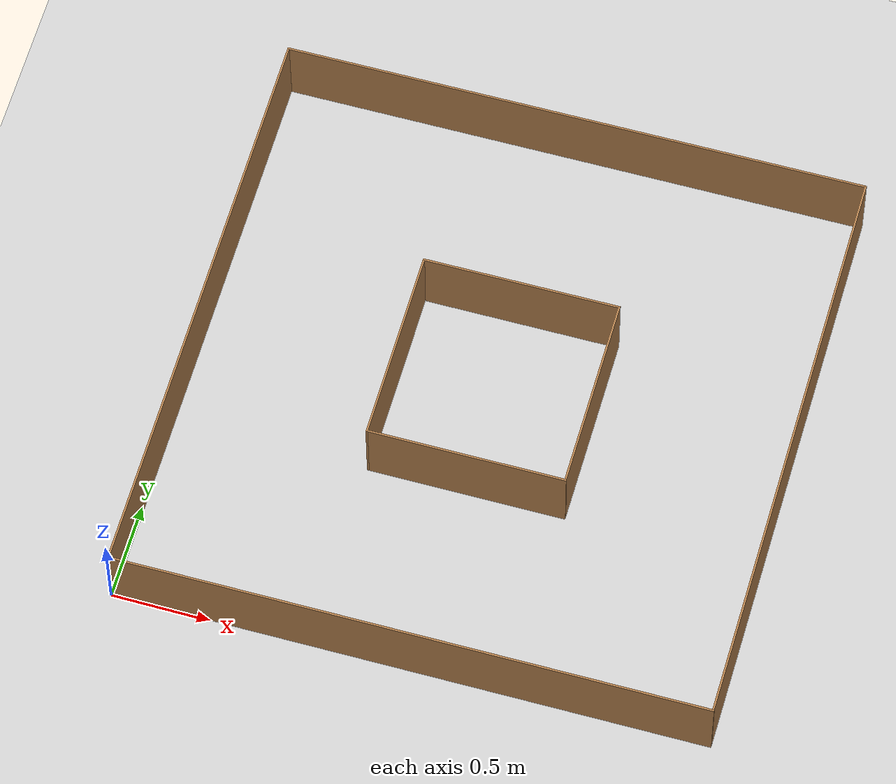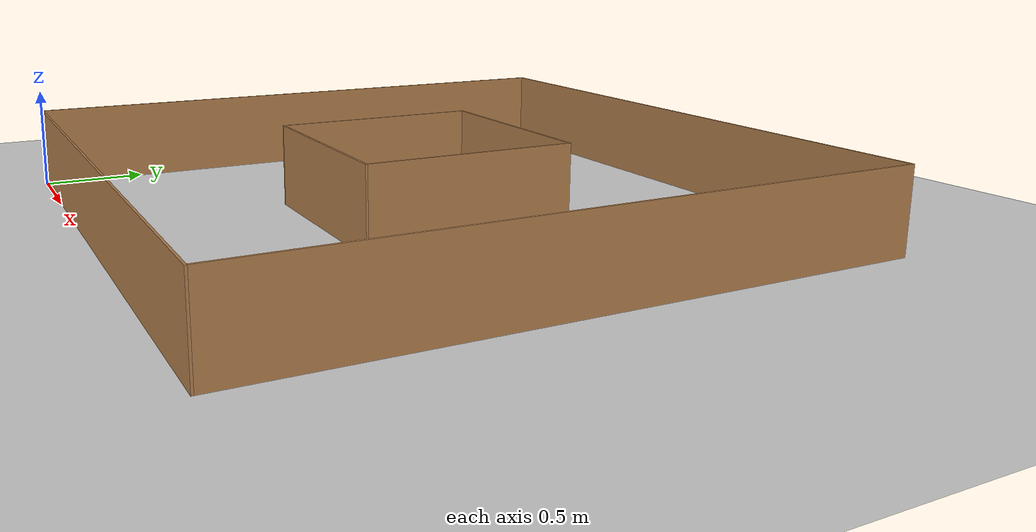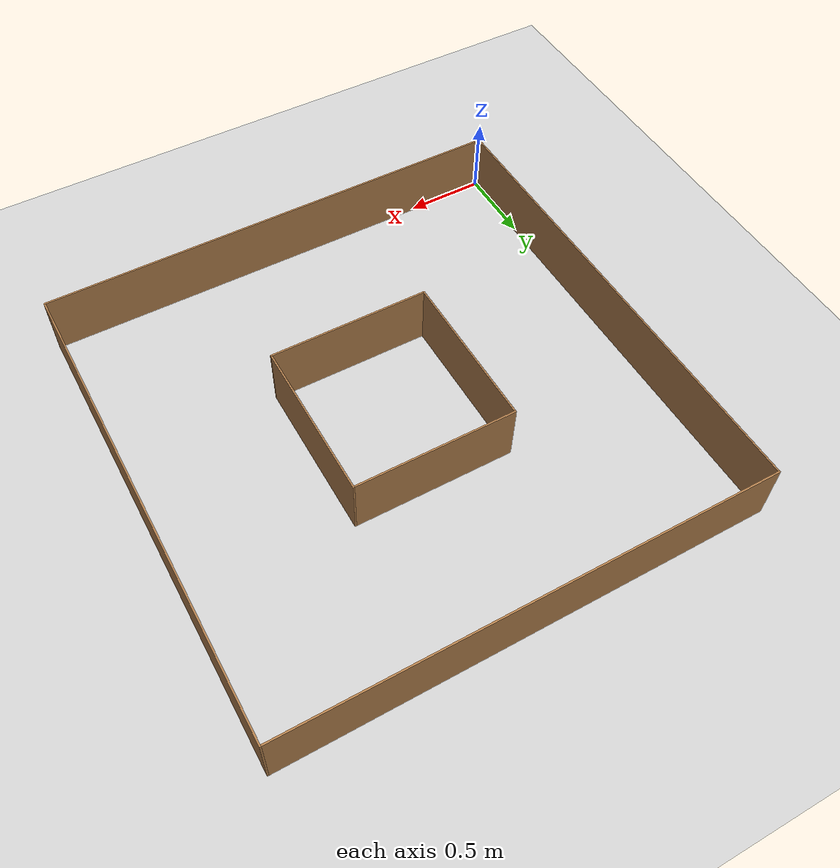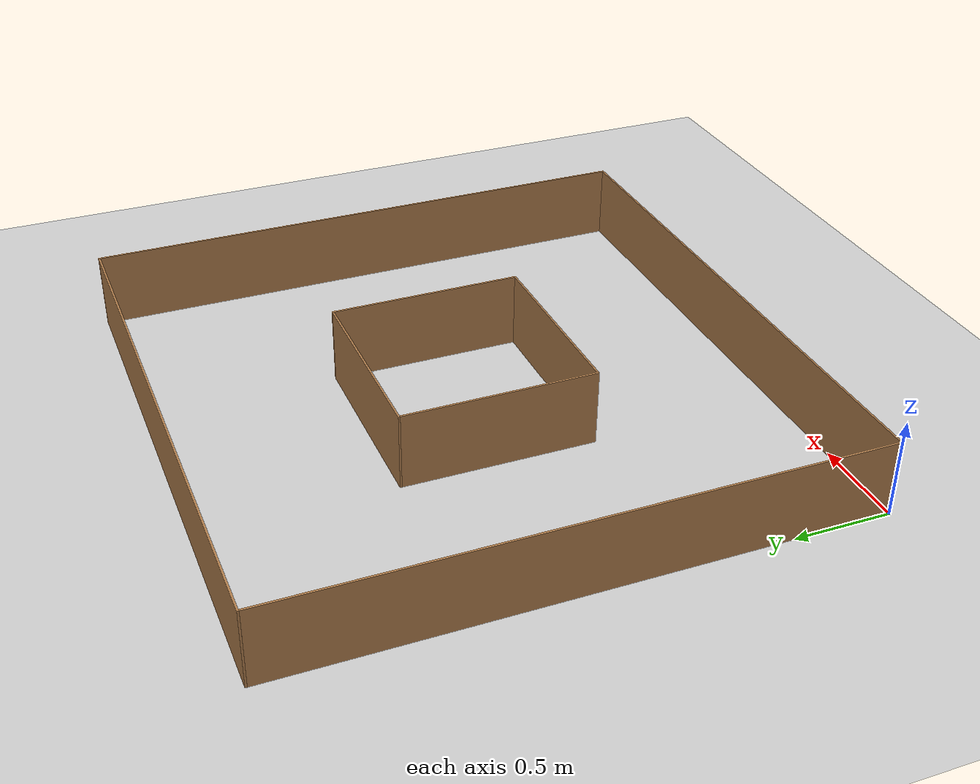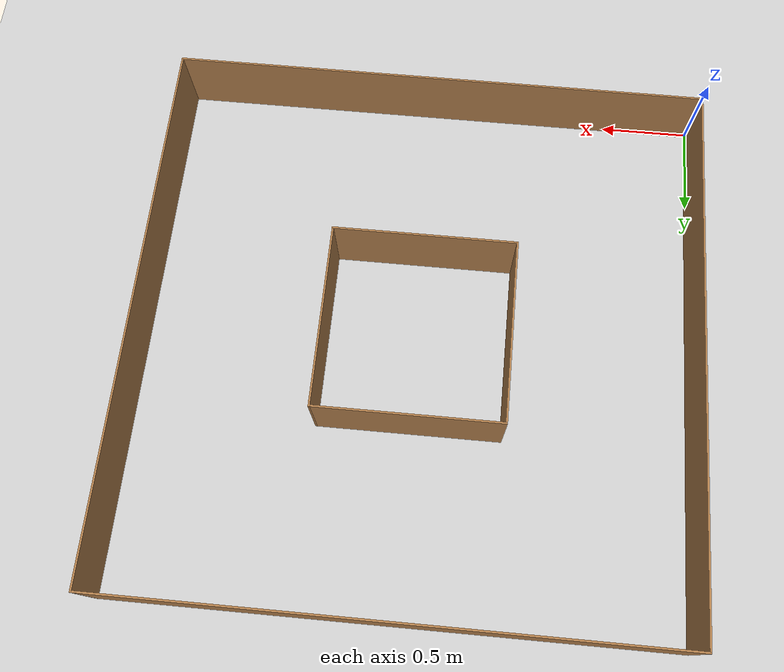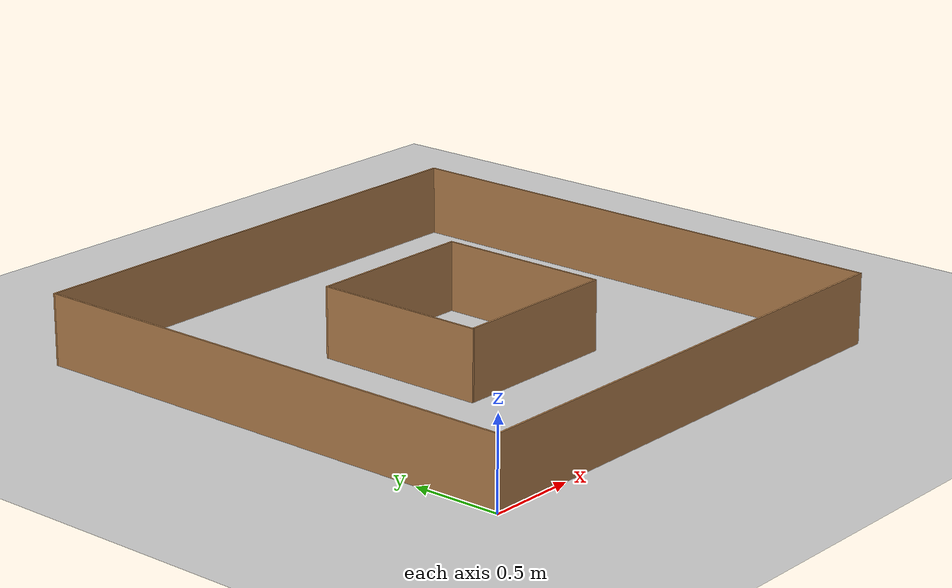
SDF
<sdf version='1.6'>
  <world name='default'>
    <!-- A global light source -->
    <include>
      <uri>model://sun</uri>
    </include>

    <!-- A ground plane -->
    <include>
      <uri>model://ground_plane</uri>
    </include>

    <physics type="ode">
      <real_time_update_rate>1000.0</real_time_update_rate>
      <max_step_size>0.001</max_step_size>
      <real_time_factor>1</real_time_factor>
      <ode>
        <solver>
          <type>quick</type>
          <iters>150</iters>
          <precon_iters>0</precon_iters>
          <sor>1.400000</sor>
          <use_dynamic_moi_rescaling>1</use_dynamic_moi_rescaling>
        </solver>
        <constraints>
          <cfm>0.00001</cfm>
          <erp>0.2</erp>
          <contact_max_correcting_vel>2000.000000</contact_max_correcting_vel>
          <contact_surface_layer>0.01000</contact_surface_layer>
        </constraints>
      </ode>
    </physics>

    <!-- Load world -->
    <include>
      <uri>model://circuit_simple</uri>
    </include>

    <scene>
      <ambient>0.4 0.4 0.4 1</ambient>
      <background>0.7 0.7 0.7 1</background>
      <shadows>false</shadows>
    </scene>

    <gui fullscreen='0'>
      <camera name='user_camera'>
        <pose>1.5 1.5 6.2 0 1.57079 1.57079</pose>
        <view_controller>orbit</view_controller>
      </camera>
    </gui>
  </world>
</sdf>

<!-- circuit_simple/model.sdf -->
<sdf version="1.6">
  <model name="circuit_simple">
    <pose frame="">0 0 0 0 -0 0</pose>
    <link name="Wall_0">
      <collision name="Wall_0_Collision">
        <geometry>
          <box>
            <size>3.0 0.01 0.4</size>
          </box>
        </geometry>
        <pose frame="">0 0 0.2 0 -0 0</pose>
      </collision>
      <visual name="Wall_0_Visual">
        <pose frame="">0 0 0.2 0 -0 0</pose>
        <geometry>
          <box>
            <size>3.0 0.01 0.4</size>
          </box>
        </geometry>
        <material>
          <script>
            <uri>file://media/materials/scripts/gazebo.material</uri>
            <name>Gazebo/Wood</name>
          </script>
          <ambient>1 1 1 1</ambient>
        </material>
      </visual>
      <pose frame="">0.005 1.5 0 0 -0 1.5708</pose>
    </link>
    <link name="Wall_1">
      <collision name="Wall_1_Collision">
        <geometry>
          <box>
            <size>3.0 0.01 0.4</size>
          </box>
        </geometry>
        <pose frame="">0 0 0.2 0 -0 0</pose>
      </collision>
      <visual name="Wall_1_Visual">
        <pose frame="">0 0 0.2 0 -0 0</pose>
        <geometry>
          <box>
            <size>3.0 0.01 0.4</size>
          </box>
        </geometry>
        <material>
          <script>
            <uri>file://media/materials/scripts/gazebo.material</uri>
            <name>Gazebo/Wood</name>
          </script>
          <ambient>1 1 1 1</ambient>
        </material>
      </visual>
      <pose frame="">1.5 3.005 0 0 -0 0</pose>
    </link>
    <link name="Wall_2">
      <collision name="Wall_2_Collision">
        <geometry>
          <box>
            <size>3.0 0.01 0.4</size>
          </box>
        </geometry>
        <pose frame="">0 0 0.2 0 -0 0</pose>
      </collision>
      <visual name="Wall_2_Visual">
        <pose frame="">0 0 0.2 0 -0 0</pose>
        <geometry>
          <box>
            <size>3.0 0.01 0.4</size>
          </box>
        </geometry>
        <material>
          <script>
            <uri>file://media/materials/scripts/gazebo.material</uri>
            <name>Gazebo/Wood</name>
          </script>
          <ambient>1 1 1 1</ambient>
        </material>
      </visual>
      <pose frame="">3.005 1.51 0 0 -0 1.5708</pose>
    </link>
    <link name="Wall_3">
      <collision name="Wall_3_Collision">
        <geometry>
          <box>
            <size>3.0 0.01 0.4</size>
          </box>
        </geometry>
        <pose frame="">0 0 0.2 0 -0 0</pose>
      </collision>
      <visual name="Wall_3_Visual">
        <pose frame="">0 0 0.2 0 -0 0</pose>
        <geometry>
          <box>
            <size>3.0 0.01 0.4</size>
          </box>
        </geometry>
        <material>
          <script>
            <uri>file://media/materials/scripts/gazebo.material</uri>
            <name>Gazebo/Wood</name>
          </script>
          <ambient>1 1 1 1</ambient>
        </material>
      </visual>
      <pose frame="">1.51 0.005 0 0 -0 0</pose>
    </link>
    <link name="Wall_4">
      <collision name="Wall_4_Collision">
        <geometry>
          <box>
            <size>1.0 0.01 0.4</size>
          </box>
        </geometry>
        <pose frame="">0 0 0.2 0 -0 0</pose>
      </collision>
      <visual name="Wall_4_Visual">
        <pose frame="">0 0 0.2 0 -0 0</pose>
        <geometry>
          <box>
            <size>1.0 0.01 0.4</size>
          </box>
        </geometry>
        <material>
          <script>
            <uri>file://media/materials/scripts/gazebo.material</uri>
            <name>Gazebo/Wood</name>
          </script>
          <ambient>1 1 1 1</ambient>
        </material>
      </visual>
      <pose frame="">1.005 1.5 0 0 -0 1.5708</pose>
    </link>
    <link name="Wall_5">
      <collision name="Wall_5_Collision">
        <geometry>
          <box>
            <size>1.0 0.01 0.4</size>
          </box>
        </geometry>
        <pose frame="">0 0 0.2 0 -0 0</pose>
      </collision>
      <visual name="Wall_5_Visual">
        <pose frame="">0 0 0.2 0 -0 0</pose>
        <geometry>
          <box>
            <size>1.0 0.01 0.4</size>
          </box>
        </geometry>
        <material>
          <script>
            <uri>file://media/materials/scripts/gazebo.material</uri>
            <name>Gazebo/Wood</name>
          </script>
          <ambient>1 1 1 1</ambient>
        </material>
      </visual>
      <pose frame="">1.5 2.005 0 0 -0 0</pose>
    </link>
    <link name="Wall_6">
      <collision name="Wall_6_Collision">
        <geometry>
          <box>
            <size>1.0 0.01 0.4</size>
          </box>
        </geometry>
        <pose frame="">0 0 0.2 0 -0 0</pose>
      </collision>
      <visual name="Wall_6_Visual">
        <pose frame="">0 0 0.2 0 -0 0</pose>
        <geometry>
          <box>
            <size>1.0 0.01 0.4</size>
          </box>
        </geometry>
        <material>
          <script>
            <uri>file://media/materials/scripts/gazebo.material</uri>
            <name>Gazebo/Wood</name>
          </script>
          <ambient>1 1 1 1</ambient>
        </material>
      </visual>
      <pose frame="">2.005 1.51 0 0 -0 1.5708</pose>
    </link>
    <link name="Wall_7">
      <collision name="Wall_7_Collision">
        <geometry>
          <box>
            <size>1.0 0.01 0.4</size>
          </box>
        </geometry>
        <pose frame="">0 0 0.2 0 -0 0</pose>
      </collision>
      <visual name="Wall_7_Visual">
        <pose frame="">0 0 0.2 0 -0 0</pose>
        <geometry>
          <box>
            <size>1.0 0.01 0.4</size>
          </box>
        </geometry>
        <material>
          <script>
            <uri>file://media/materials/scripts/gazebo.material</uri>
            <name>Gazebo/Wood</name>
          </script>
          <ambient>1 1 1 1</ambient>
        </material>
      </visual>
      <pose frame="">1.51 1.005 0 0 -0 0</pose>
    </link>
    <static>1</static>
  </model>
</sdf>
